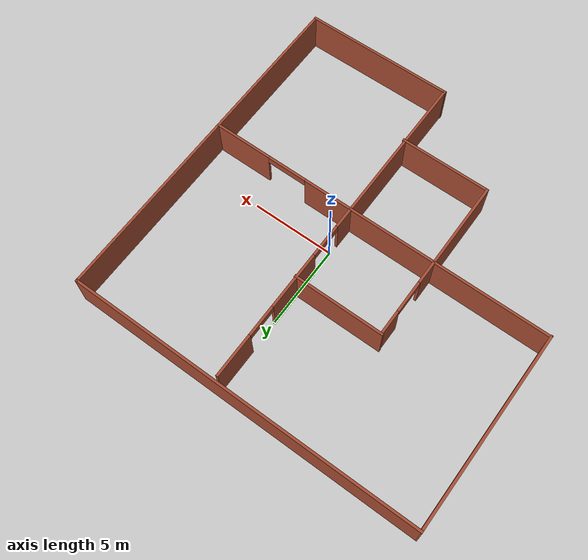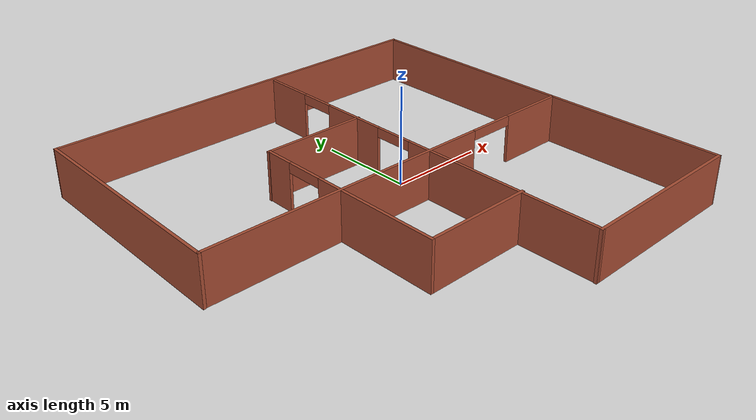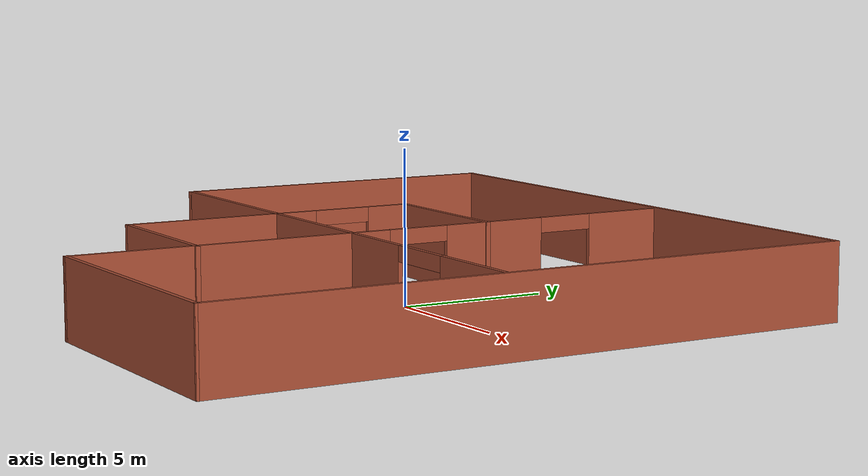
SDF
<?xml version='1.0'?>
<sdf version='1.6'>
  <model name='map'>
    <pose frame=''>-1.65513 -0.632627 0 0 -0 0</pose>
    <link name='Wall_14'>
      <collision name='Wall_14_Collision'>
        <geometry>
          <box>
            <size>21.25 0.15 2.5</size>
          </box>
        </geometry>
        <pose frame=''>0 0 1.25 0 -0 0</pose>
      </collision>
      <visual name='Wall_14_Visual'>
        <pose frame=''>0 0 1.25 0 -0 0</pose>
        <geometry>
          <box>
            <size>21.25 0.15 2.5</size>
          </box>
        </geometry>
        <material>
          <script>
            <uri>file://media/materials/scripts/gazebo.material</uri>
            <name>Gazebo/Bricks</name>
          </script>
          <ambient>1 1 1 1</ambient>
        </material>
      </visual>
      <pose frame=''>0.045925 10.4556 0 0 -0 0</pose>
    </link>
    <link name='Wall_17'>
      <collision name='Wall_17_Collision'>
        <geometry>
          <box>
            <size>21 0.15 2.5</size>
          </box>
        </geometry>
        <pose frame=''>0 0 1.25 0 -0 0</pose>
      </collision>
      <visual name='Wall_17_Visual'>
        <pose frame=''>0 0 1.25 0 -0 0</pose>
        <geometry>
          <box>
            <size>21 0.15 2.5</size>
          </box>
        </geometry>
        <material>
          <script>
            <uri>file://media/materials/scripts/gazebo.material</uri>
            <name>Gazebo/Bricks</name>
          </script>
          <ambient>1 1 1 1</ambient>
        </material>
      </visual>
      <pose frame=''>10.5959 0.03055 0 0 0 -1.5708</pose>
    </link>
    <link name='Wall_18'>
      <collision name='Wall_18_Collision'>
        <geometry>
          <box>
            <size>9.15316 0.15 2.5</size>
          </box>
        </geometry>
        <pose frame=''>0 0 1.25 0 -0 0</pose>
      </collision>
      <visual name='Wall_18_Visual'>
        <pose frame=''>0 0 1.25 0 -0 0</pose>
        <geometry>
          <box>
            <size>9.15316 0.15 2.5</size>
          </box>
        </geometry>
        <material>
          <script>
            <uri>file://media/materials/scripts/gazebo.material</uri>
            <name>Gazebo/Bricks</name>
          </script>
          <ambient>1 1 1 1</ambient>
        </material>
      </visual>
      <pose frame=''>6.09445 -10.425 0 0 0 -3.1348</pose>
    </link>
    <link name='Wall_19'>
      <pose frame=''>1.62356 -0.15563 0 0 -0 1.5708</pose>
      <visual name='Wall_19_Visual_0'>
        <pose frame=''>-5.07219 0 1.25 0 -0 0</pose>
        <geometry>
          <box>
            <size>10.6056 0.15 2.5</size>
          </box>
        </geometry>
        <material>
          <script>
            <uri>file://media/materials/scripts/gazebo.material</uri>
            <name>Gazebo/Bricks</name>
          </script>
          <ambient>1 1 1 1</ambient>
        </material>
      </visual>
      <collision name='Wall_19_Collision_0'>
        <geometry>
          <box>
            <size>10.6056 0.15 2.5</size>
          </box>
        </geometry>
        <pose frame=''>-5.07219 0 1.25 0 -0 0</pose>
      </collision>
      <visual name='Wall_19_Visual_1'>
        <pose frame=''>4.06718 0 1.25 0 -0 0</pose>
        <geometry>
          <box>
            <size>3.56139 0.15 2.5</size>
          </box>
        </geometry>
        <material>
          <script>
            <uri>file://media/materials/scripts/gazebo.material</uri>
            <name>Gazebo/Bricks</name>
          </script>
          <ambient>1 1 1 1</ambient>
        </material>
      </visual>
      <collision name='Wall_19_Collision_1'>
        <geometry>
          <box>
            <size>3.56139 0.15 2.5</size>
          </box>
        </geometry>
        <pose frame=''>4.06718 0 1.25 0 -0 0</pose>
      </collision>
      <visual name='Wall_19_Visual_2'>
        <pose frame=''>9.05572 0 1.25 0 -0 0</pose>
        <geometry>
          <box>
            <size>2.63856 0.15 2.5</size>
          </box>
        </geometry>
        <material>
          <script>
            <uri>file://media/materials/scripts/gazebo.material</uri>
            <name>Gazebo/Bricks</name>
          </script>
          <ambient>1 1 1 1</ambient>
        </material>
      </visual>
      <collision name='Wall_19_Collision_2'>
        <geometry>
          <box>
            <size>2.63856 0.15 2.5</size>
          </box>
        </geometry>
        <pose frame=''>9.05572 0 1.25 0 -0 0</pose>
      </collision>
      <visual name='Wall_19_Visual_3'>
        <pose frame=''>1.25855 0 2.25 0 -0 0</pose>
        <geometry>
          <box>
            <size>2.05586 0.15 0.5</size>
          </box>
        </geometry>
        <material>
          <script>
            <uri>file://media/materials/scripts/gazebo.material</uri>
            <name>Gazebo/Bricks</name>
          </script>
          <ambient>1 1 1 1</ambient>
        </material>
      </visual>
      <collision name='Wall_19_Collision_3'>
        <geometry>
          <box>
            <size>2.05586 0.15 0.5</size>
          </box>
        </geometry>
        <pose frame=''>1.25855 0 2.25 0 -0 0</pose>
      </collision>
      <visual name='Wall_19_Visual_4'>
        <pose frame=''>6.79216 0 2.25 0 -0 0</pose>
        <geometry>
          <box>
            <size>1.88857 0.15 0.5</size>
          </box>
        </geometry>
        <material>
          <script>
            <uri>file://media/materials/scripts/gazebo.material</uri>
            <name>Gazebo/Bricks</name>
          </script>
          <ambient>1 1 1 1</ambient>
        </material>
      </visual>
      <collision name='Wall_19_Collision_4'>
        <geometry>
          <box>
            <size>1.88857 0.15 0.5</size>
          </box>
        </geometry>
        <pose frame=''>6.79216 0 2.25 0 -0 0</pose>
      </collision>
    </link>
    <link name='Wall_21'>
      <collision name='Wall_21_Collision'>
        <geometry>
          <box>
            <size>11.8369 0.15 2.5</size>
          </box>
        </geometry>
        <pose frame=''>0 0 1.25 0 -0 0</pose>
      </collision>
      <visual name='Wall_21_Visual'>
        <pose frame=''>0 0 1.25 0 -0 0</pose>
        <geometry>
          <box>
            <size>11.8369 0.15 2.5</size>
          </box>
        </geometry>
        <material>
          <script>
            <uri>file://media/materials/scripts/gazebo.material</uri>
            <name>Gazebo/Bricks</name>
          </script>
          <ambient>1 1 1 1</ambient>
        </material>
      </visual>
      <pose frame=''>-10.55 4.6123 0 0 0 -1.57865</pose>
    </link>
    <link name='Wall_22'>
      <pose frame=''>-0.015256 -1.20035 0 0 -0 0</pose>
      <visual name='Wall_22_Visual_0'>
        <pose frame=''>-2.99318 0 1.25 0 -0 0</pose>
        <geometry>
          <box>
            <size>15.2636 0.15 2.5</size>
          </box>
        </geometry>
        <material>
          <script>
            <uri>file://media/materials/scripts/gazebo.material</uri>
            <name>Gazebo/Bricks</name>
          </script>
          <ambient>1 1 1 1</ambient>
        </material>
      </visual>
      <collision name='Wall_22_Collision_0'>
        <geometry>
          <box>
            <size>15.2636 0.15 2.5</size>
          </box>
        </geometry>
        <pose frame=''>-2.99318 0 1.25 0 -0 0</pose>
      </collision>
      <visual name='Wall_22_Visual_1'>
        <pose frame=''>8.84987 0 1.25 0 -0 0</pose>
        <geometry>
          <box>
            <size>3.55027 0.15 2.5</size>
          </box>
        </geometry>
        <material>
          <script>
            <uri>file://media/materials/scripts/gazebo.material</uri>
            <name>Gazebo/Bricks</name>
          </script>
          <ambient>1 1 1 1</ambient>
        </material>
      </visual>
      <collision name='Wall_22_Collision_1'>
        <geometry>
          <box>
            <size>3.55027 0.15 2.5</size>
          </box>
        </geometry>
        <pose frame=''>8.84987 0 1.25 0 -0 0</pose>
      </collision>
      <visual name='Wall_22_Visual_2'>
        <pose frame=''>5.85669 0 2.25 0 -0 0</pose>
        <geometry>
          <box>
            <size>2.43608 0.15 0.5</size>
          </box>
        </geometry>
        <material>
          <script>
            <uri>file://media/materials/scripts/gazebo.material</uri>
            <name>Gazebo/Bricks</name>
          </script>
          <ambient>1 1 1 1</ambient>
        </material>
      </visual>
      <collision name='Wall_22_Collision_2'>
        <geometry>
          <box>
            <size>2.43608 0.15 0.5</size>
          </box>
        </geometry>
        <pose frame=''>5.85669 0 2.25 0 -0 0</pose>
      </collision>
    </link>
    <link name='Wall_24'>
      <collision name='Wall_24_Collision'>
        <geometry>
          <box>
            <size>5.49472 0.15 2.5</size>
          </box>
        </geometry>
        <pose frame=''>0 0 1.25 0 -0 0</pose>
      </collision>
      <visual name='Wall_24_Visual'>
        <pose frame=''>0 0 1.25 0 -0 0</pose>
        <geometry>
          <box>
            <size>5.49472 0.15 2.5</size>
          </box>
        </geometry>
        <material>
          <script>
            <uri>file://media/materials/scripts/gazebo.material</uri>
            <name>Gazebo/Bricks</name>
          </script>
          <ambient>1 1 1 1</ambient>
        </material>
      </visual>
      <pose frame=''>-1.00492 3.64668 0 0 -0 3.14159</pose>
    </link>
    <link name='Wall_25'>
      <pose frame=''>-3.64669 -1.40332 0 0 0 -1.5708</pose>
      <visual name='Wall_25_Visual_0'>
        <pose frame=''>-4.34099 0 1.25 0 -0 0</pose>
        <geometry>
          <box>
            <size>1.56802 0.15 2.5</size>
          </box>
        </geometry>
        <material>
          <script>
            <uri>file://media/materials/scripts/gazebo.material</uri>
            <name>Gazebo/Bricks</name>
          </script>
          <ambient>1 1 1 1</ambient>
        </material>
      </visual>
      <collision name='Wall_25_Collision_0'>
        <geometry>
          <box>
            <size>1.56802 0.15 2.5</size>
          </box>
        </geometry>
        <pose frame=''>-4.34099 0 1.25 0 -0 0</pose>
      </collision>
      <visual name='Wall_25_Visual_1'>
        <pose frame=''>1.76632 0 1.25 0 -0 0</pose>
        <geometry>
          <box>
            <size>6.71737 0.15 2.5</size>
          </box>
        </geometry>
        <material>
          <script>
            <uri>file://media/materials/scripts/gazebo.material</uri>
            <name>Gazebo/Bricks</name>
          </script>
          <ambient>1 1 1 1</ambient>
        </material>
      </visual>
      <collision name='Wall_25_Collision_1'>
        <geometry>
          <box>
            <size>6.71737 0.15 2.5</size>
          </box>
        </geometry>
        <pose frame=''>1.76632 0 1.25 0 -0 0</pose>
      </collision>
      <visual name='Wall_25_Visual_2'>
        <pose frame=''>-2.57468 0 2.25 0 -0 0</pose>
        <geometry>
          <box>
            <size>1.96461 0.15 0.5</size>
          </box>
        </geometry>
        <material>
          <script>
            <uri>file://media/materials/scripts/gazebo.material</uri>
            <name>Gazebo/Bricks</name>
          </script>
          <ambient>1 1 1 1</ambient>
        </material>
      </visual>
      <collision name='Wall_25_Collision_2'>
        <geometry>
          <box>
            <size>1.96461 0.15 0.5</size>
          </box>
        </geometry>
        <pose frame=''>-2.57468 0 2.25 0 -0 0</pose>
      </collision>
    </link>
    <link name='Wall_30'>
      <collision name='Wall_30_Collision'>
        <geometry>
          <box>
            <size>5.5 0.15 2.5</size>
          </box>
        </geometry>
        <pose frame=''>0 0 1.25 0 -0 0</pose>
      </collision>
      <visual name='Wall_30_Visual'>
        <pose frame=''>0 0 1.25 0 -0 0</pose>
        <geometry>
          <box>
            <size>5.5 0.15 2.5</size>
          </box>
        </geometry>
        <material>
          <script>
            <uri>file://media/materials/scripts/gazebo.material</uri>
            <name>Gazebo/Bricks</name>
          </script>
          <ambient>1 1 1 1</ambient>
        </material>
      </visual>
      <pose frame=''>-0.971692 -6.45332 0 0 -0 0</pose>
    </link>
    <static>1</static>
  </model>
</sdf>
